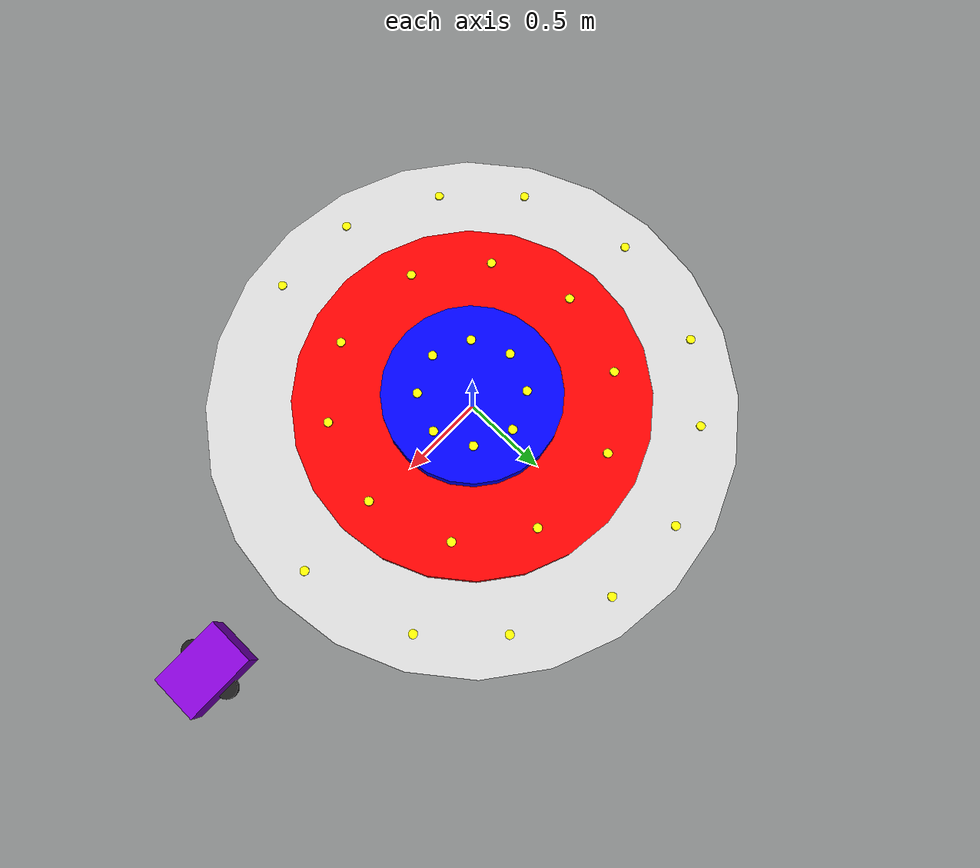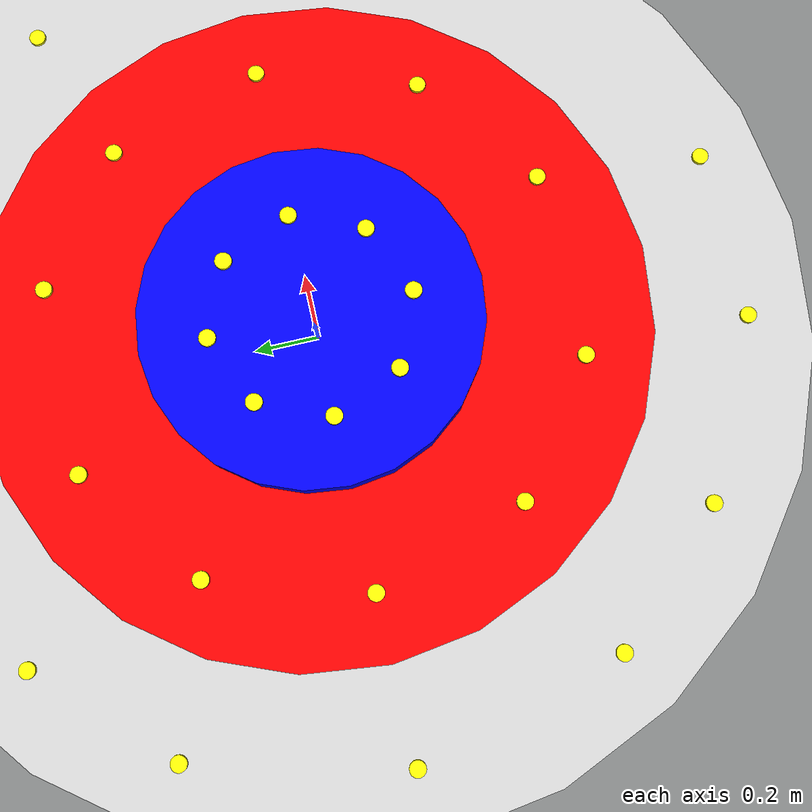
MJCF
<mujoco>
  <asset>
    <material name="gray"  rgba="0.8 0.8 0.8 1"/>
    <material name="red"   rgba="1 0 0 1"/>
    <material name="blue"  rgba="0 0 1 1"/>
    <material name="yellow" rgba="1 1 0 1"/>
    <material name="purple" rgba="0.5 0 0.8 1"/>
    <material name="black" rgba="0.1 0.1 0.1 1"/>
  </asset>

  <worldbody>
    <!-- 円柱フィールド -->
    <geom type="cylinder" size="1.5 0.05" pos="0 0 0.05" material="gray"/>
    <geom type="cylinder" size="1.0 0.05" pos="0 0 0.15" material="red"/>
    <geom type="cylinder" size="0.5 0.05" pos="0 0 0.25" material="blue"/>

    <!-- コイン配置: 上段 -->
    <geom type="cylinder" size="0.025 0.005" pos="0.30 0.00 0.305" material="yellow"/>
    <geom type="cylinder" size="0.025 0.005" pos="0.21 0.21 0.305" material="yellow"/>
    <geom type="cylinder" size="0.025 0.005" pos="0.00 0.30 0.305" material="yellow"/>
    <geom type="cylinder" size="0.025 0.005" pos="-0.21 0.21 0.305" material="yellow"/>
    <geom type="cylinder" size="0.025 0.005" pos="-0.30 0.00 0.305" material="yellow"/>
    <geom type="cylinder" size="0.025 0.005" pos="-0.21 -0.21 0.305" material="yellow"/>
    <geom type="cylinder" size="0.025 0.005" pos="0.00 -0.30 0.305" material="yellow"/>
    <geom type="cylinder" size="0.025 0.005" pos="0.21 -0.21 0.305" material="yellow"/>

    <!-- コイン配置: 中段 -->
    <geom type="cylinder" size="0.025 0.005" pos="0.80 0.00 0.205" material="yellow"/>
    <geom type="cylinder" size="0.025 0.005" pos="0.65 0.47 0.205" material="yellow"/>
    <geom type="cylinder" size="0.025 0.005" pos="0.28 0.75 0.205" material="yellow"/>
    <geom type="cylinder" size="0.025 0.005" pos="-0.28 0.75 0.205" material="yellow"/>
    <geom type="cylinder" size="0.025 0.005" pos="-0.65 0.47 0.205" material="yellow"/>
    <geom type="cylinder" size="0.025 0.005" pos="-0.80 0.00 0.205" material="yellow"/>
    <geom type="cylinder" size="0.025 0.005" pos="-0.65 -0.47 0.205" material="yellow"/>
    <geom type="cylinder" size="0.025 0.005" pos="-0.28 -0.75 0.205" material="yellow"/>
    <geom type="cylinder" size="0.025 0.005" pos="0.28 -0.75 0.205" material="yellow"/>
    <geom type="cylinder" size="0.025 0.005" pos="0.65 -0.47 0.205" material="yellow"/>

    <!-- コイン配置: 下段 -->
    <geom type="cylinder" size="0.025 0.005" pos="1.30 0.00 0.105" material="yellow"/>
    <geom type="cylinder" size="0.025 0.005" pos="1.13 0.65 0.105" material="yellow"/>
    <geom type="cylinder" size="0.025 0.005" pos="0.78 1.02 0.105" material="yellow"/>
    <geom type="cylinder" size="0.025 0.005" pos="0.26 1.28 0.105" material="yellow"/>
    <geom type="cylinder" size="0.025 0.005" pos="-0.26 1.28 0.105" material="yellow"/>
    <geom type="cylinder" size="0.025 0.005" pos="-0.78 1.02 0.105" material="yellow"/>
    <geom type="cylinder" size="0.025 0.005" pos="-1.13 0.65 0.105" material="yellow"/>
    <geom type="cylinder" size="0.025 0.005" pos="-1.30 0.00 0.105" material="yellow"/>
    <geom type="cylinder" size="0.025 0.005" pos="-1.13 -0.65 0.105" material="yellow"/>
    <geom type="cylinder" size="0.025 0.005" pos="-0.78 -1.02 0.105" material="yellow"/>
    <geom type="cylinder" size="0.025 0.005" pos="-0.26 -1.28 0.105" material="yellow"/>
    <geom type="cylinder" size="0.025 0.005" pos="0.26 -1.28 0.105" material="yellow"/>

    <!-- ロボット：寸法に基づき紫色で配置 -->
    <body name="robot" pos="2.0 0.0 0.10">
      <geom type="box" size="0.2 0.14 0.1" material="purple"/>

      <!-- 左右の車輪 -->
      <body name="left_wheel" pos="0.0 0.14 -0.05">
        <joint name="left_hinge" type="hinge" axis="0 -1 0"/>
        <geom type="cylinder" size="0.055 0.02" material="black"/>
      </body>
      <body name="right_wheel" pos="0.0 -0.14 -0.05">
        <joint name="right_hinge" type="hinge" axis="0 -1 0"/>
        <geom type="cylinder" size="0.055 0.02" material="black"/>
      </body>

      <!-- ジャンプ用スライダ -->
      <joint name="jump_slider" type="slide" axis="0 0 1" pos="0 0 0"/>
    </body>
  </worldbody>

  <!-- モーター -->
  <actuator>
    <motor name="left_motor" joint="left_hinge" gear="150"/>
    <motor name="right_motor" joint="right_hinge" gear="150"/>
    <motor name="jump_motor" joint="jump_slider" gear="100"/>
  </actuator>
</mujoco>
